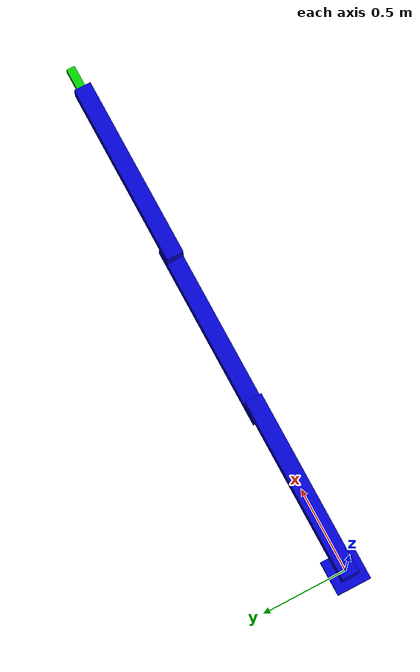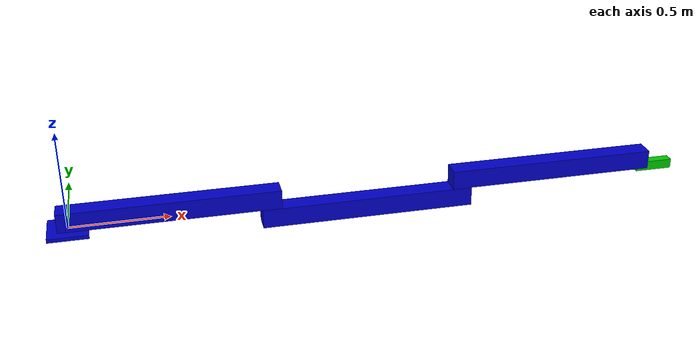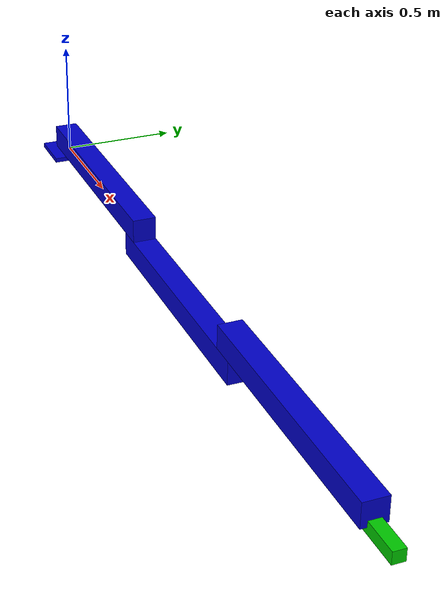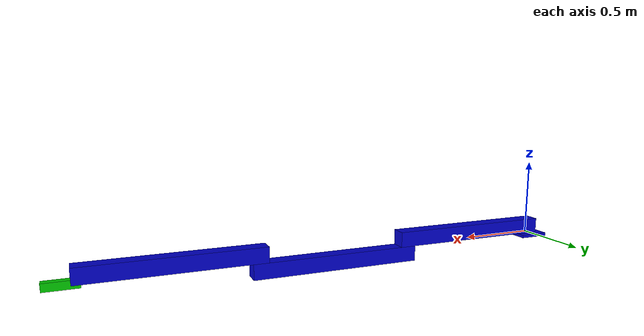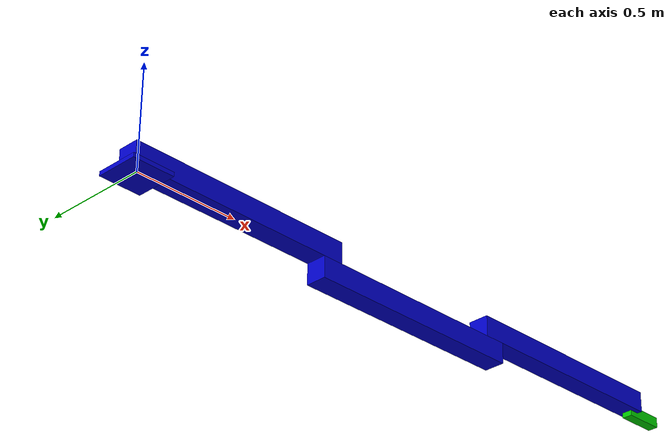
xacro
<?xml version="1.0"?>
<robot name="r3_robot">

  <material name="blue">
      <color rgba="0 0 0.8 1.0"/>
  </material>

  <material name="green">
      <color rgba="0 0.8 0 1.0"/>
  </material>

  <link name="world" />

  <link name="base_link">
    <visual>
      <geometry>
        <box size="0.2 0.2 0.02"/>
      </geometry>
      <origin xyz="0 0 -0.01"/>
      <material name="blue"/>
    </visual>
  </link>

<link name="link_1">
    <visual>
      <geometry>
        <box size="1.1 0.1 0.1"/>
      </geometry>
      <origin xyz="0.5 0 0.05"/>
      <material name="blue"/>
    </visual>
    <collision>
      <geometry>
        <box size="1.1 0.1 0.1"/>
      </geometry>
      <origin xyz="0.5 0 0.05"/>
    </collision>
  </link>

  <link name="link_2">
    <visual>
      <geometry>
        <box size="1.1 0.1 0.1"/>
      </geometry>
      <origin xyz="0.5 0 -0.05"/>
      <material name="blue"/>
    </visual>
    <collision>
      <geometry>
        <box size="1.1 0.1 0.1"/>
      </geometry>
      <origin xyz="0.5 0 -0.05"/>
    </collision>
  </link>

  <link name="link_3">
    <visual>
      <geometry>
        <box size="1.1 0.1 0.1"/>
      </geometry>
      <origin xyz="0.5 0 0.05"/>
      <material name="blue"/>
    </visual>
    <collision>
      <geometry>
        <box size="1.1 0.1 0.1"/>
      </geometry>
      <origin xyz="0.5 0 0.05"/>
    </collision>
  </link>

<link name="flange" />

<link name="tool">
    <visual>
      <geometry>
        <box size="0.2 0.05 0.05"/>
      </geometry>
      <origin xyz="0.1 0 0"/>
      <material name="green"/>
    </visual>
    <collision>
      <geometry>
        <box size="0.2 0.05 0.05"/>
      </geometry>
      <origin xyz="0.1 0 0"/>
    </collision>
  </link>

<link name="tool0" />

<joint name="world_to_base_link" type="fixed">
    <parent link="world"/>
    <child link="base_link"/>
</joint>

<joint name="base_link_link_1" type="revolute">
    <axis xyz="0 0 1"/>
    <limit effort="1000.0" lower="-1.5" upper="1.5" velocity="0.5"/>
    <parent link="base_link"/>
    <child link="link_1"/>
    <origin xyz="0 0 0"/>
</joint>

<joint name="link_1_link_2" type="revolute">
    <axis xyz="0 0 1"/>
    <limit effort="1000.0" lower="-1.5" upper="1.5" velocity="0.5"/>
    <parent link="link_1"/>
    <child link="link_2"/>
    <origin xyz="1 0 0"/>
</joint>

<joint name="link_2_link_3" type="revolute">
    <axis xyz="0 0 1"/>
    <limit effort="1000.0" lower="-1.5" upper="1.5" velocity="0.5"/>
    <parent link="link_2"/>
    <child link="link_3"/>
    <origin xyz="1 0 0"/>
</joint>

<joint name="link_3_to_flange" type="fixed">
    <parent link="link_3"/>
    <child link="flange"/>
    <origin xyz="1 0 0"/>
</joint>

<joint name="flange_to_tool" type="fixed">
    <parent link="flange"/>
    <child link="tool"/>
</joint>

<joint name="tool_to_tool0" type="fixed">
    <parent link="tool"/>
    <child link="tool0"/>
    <origin xyz="0.2 0 0"/>
</joint>

</robot>
